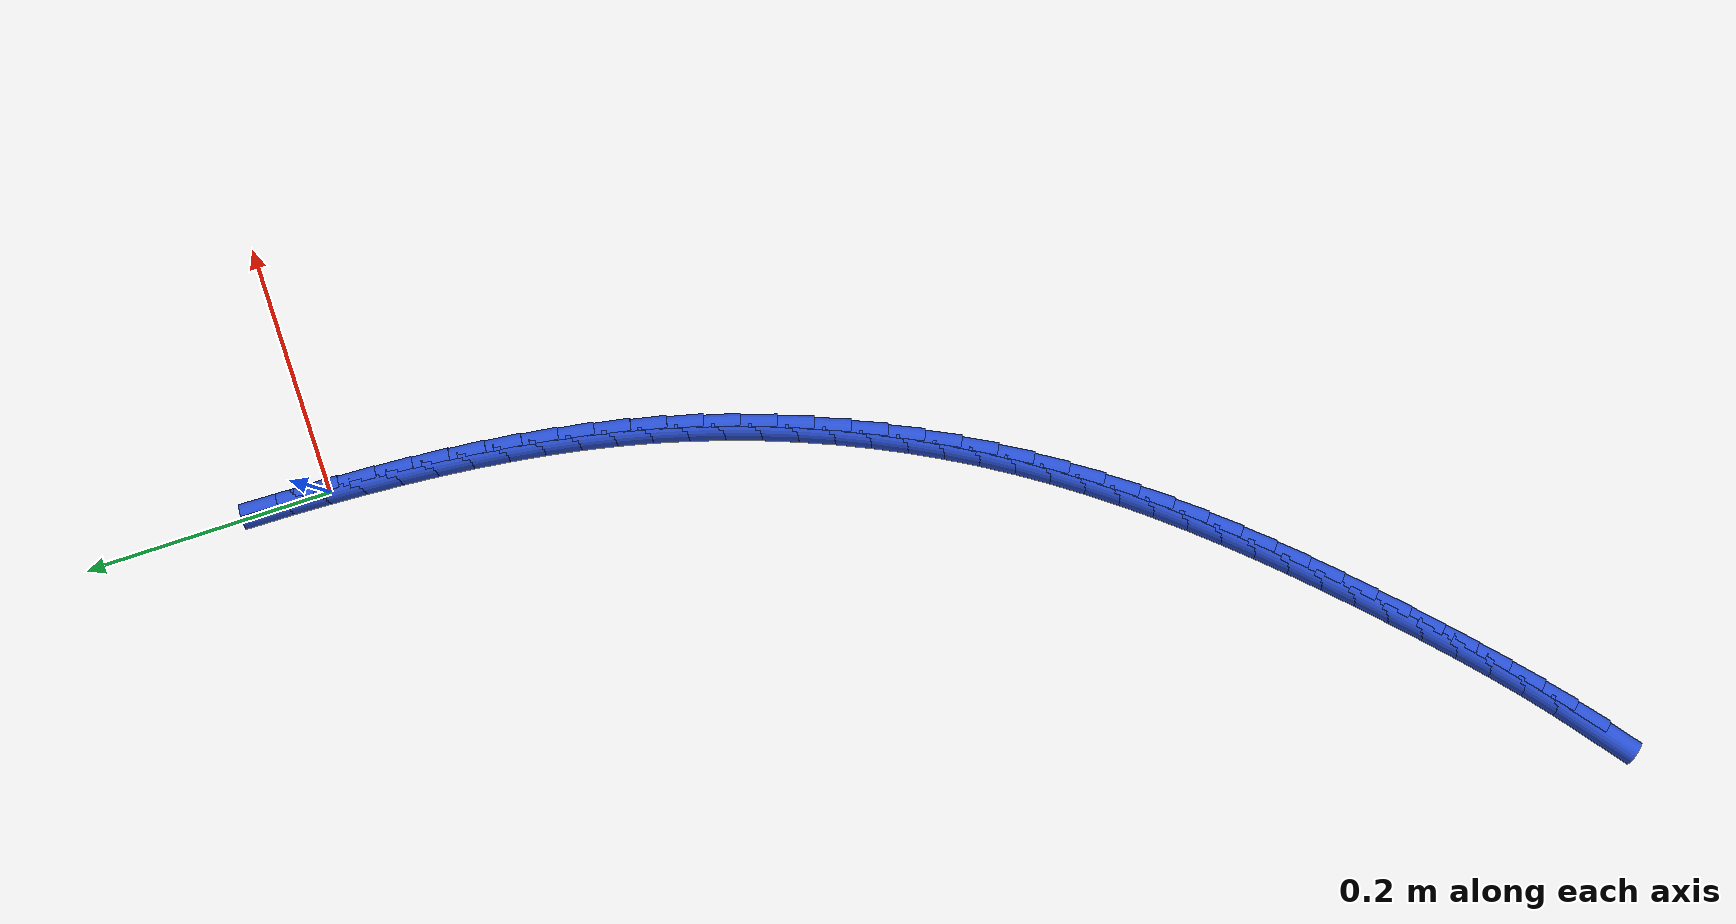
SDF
<sdf version="1.6">
 <world name="default">
  <model name="ground_plane">
   <static>1</static>
   <link name="link">
    <collision name="collision">
     <geometry><plane><normal>0 0 1</normal><size>100 100</size></plane></geometry>
     <surface><friction><ode><mu>100</mu><mu2>50</mu2></ode></friction></surface>
    </collision>
    <visual name="visual">
     <cast_shadows>0</cast_shadows>
     <geometry><plane><normal>0 0 1</normal><size>100 100</size></plane></geometry>
     <material>
      <script><uri>file://media/materials/scripts/gazebo.material</uri><name>Gazebo/WhiteGlow</name></script>
     </material>
    </visual>
   </link>
  </model>
  <model name="line">
   <link name="link_0">
    <pose>-1.0625181290357943e-17 3.469446951953614e-17 0.01 0 1.57 1.5319547142780796</pose>
    <collision name="collision">
     <geometry><cylinder><radius>0.01</radius><length>0.08</length></cylinder></geometry>
    </collision>
    <visual name="visual">
     <material>
      <script><name>Gazebo/Blue</name><uri>file://media/materials/scripts/gazebo.material</uri></script>
     </material>
     <geometry><cylinder><radius>0.01</radius><length>0.08</length></cylinder></geometry>
    </visual>
   </link>
   <link name="link_1">
    <pose>0.0011593005383207513 0.029831858247192315 0.01 0 1.57 1.551653794150923</pose>
    <collision name="collision">
     <geometry><cylinder><radius>0.01</radius><length>0.08</length></cylinder></geometry>
    </collision>
    <visual name="visual">
     <material>
      <script><name>Gazebo/Blue</name><uri>file://media/materials/scripts/gazebo.material</uri></script>
     </material>
     <geometry><cylinder><radius>0.01</radius><length>0.08</length></cylinder></geometry>
    </visual>
   </link>
   <link name="link_204">
    <pose>-0.47994454819354443 -0.8795739899895844 0.01 0 1.57 0.6713680718457643</pose>
    <collision name="collision">
     <geometry><cylinder><radius>0.01</radius><length>0.08</length></cylinder></geometry>
    </collision>
    <visual name="visual">
     <material>
      <script><name>Gazebo/Blue</name><uri>file://media/materials/scripts/gazebo.material</uri></script>
     </material>
     <geometry><cylinder><radius>0.01</radius><length>0.08</length></cylinder></geometry>
    </visual>
   </link>
   <link name="link_205">
    <pose>-0.4569850058315257 -0.8613330156940847 0.01 0 1.57 0.702355281988623</pose>
    <collision name="collision">
     <geometry><cylinder><radius>0.01</radius><length>0.08</length></cylinder></geometry>
    </collision>
    <visual name="visual">
     <material>
      <script><name>Gazebo/Blue</name><uri>file://media/materials/scripts/gazebo.material</uri></script>
     </material>
     <geometry><cylinder><radius>0.01</radius><length>0.08</length></cylinder></geometry>
    </visual>
   </link>
   <link name="link_206">
    <pose>-0.4344758293475783 -0.8422829903139324 0.01 0 1.57 0.7281456533366035</pose>
    <collision name="collision">
     <geometry><cylinder><radius>0.01</radius><length>0.08</length></cylinder></geometry>
    </collision>
    <visual name="visual">
     <material>
      <script><name>Gazebo/Blue</name><uri>file://media/materials/scripts/gazebo.material</uri></script>
     </material>
     <geometry><cylinder><radius>0.01</radius><length>0.08</length></cylinder></geometry>
    </visual>
   </link>
   <link name="link_207">
    <pose>-0.4123845741687112 -0.8225867893371276 0.01 0 1.57 0.7489748097054679</pose>
    <collision name="collision">
     <geometry><cylinder><radius>0.01</radius><length>0.08</length></cylinder></geometry>
    </collision>
    <visual name="visual">
     <material>
      <script><name>Gazebo/Blue</name><uri>file://media/materials/scripts/gazebo.material</uri></script>
     </material>
     <geometry><cylinder><radius>0.01</radius><length>0.08</length></cylinder></geometry>
    </visual>
   </link>
   <link name="link_208">
    <pose>-0.39067879572193304 -0.8024072882516703 0.01 0 1.57 0.7650242532784701</pose>
    <collision name="collision">
     <geometry><cylinder><radius>0.01</radius><length>0.08</length></cylinder></geometry>
    </collision>
    <visual name="visual">
     <material>
      <script><name>Gazebo/Blue</name><uri>file://media/materials/scripts/gazebo.material</uri></script>
     </material>
     <geometry><cylinder><radius>0.01</radius><length>0.08</length></cylinder></geometry>
    </visual>
   </link>
   <link name="link_209">
    <pose>-0.36932604943425384 -0.7819073625455619 0.01 0 1.57 0.7764852237362975</pose>
    <collision name="collision">
     <geometry><cylinder><radius>0.01</radius><length>0.08</length></cylinder></geometry>
    </collision>
    <visual name="visual">
     <material>
      <script><name>Gazebo/Blue</name><uri>file://media/materials/scripts/gazebo.material</uri></script>
     </material>
     <geometry><cylinder><radius>0.01</radius><length>0.08</length></cylinder></geometry>
    </visual>
   </link>
   <link name="link_210">
    <pose>-0.34829466221696265 -0.7612475760837761 0.01 0 1.57 0.7861799466689353</pose>
    <collision name="collision">
     <geometry><cylinder><radius>0.01</radius><length>0.08</length></cylinder></geometry>
    </collision>
    <visual name="visual">
     <material>
      <script><name>Gazebo/Blue</name><uri>file://media/materials/scripts/gazebo.material</uri></script>
     </material>
     <geometry><cylinder><radius>0.01</radius><length>0.08</length></cylinder></geometry>
    </visual>
   </link>
   <link name="link_211">
    <pose>-0.3275817446894052 -0.7405022471860951 0.01 0 1.57 0.7976688020346112</pose>
    <collision name="collision">
     <geometry><cylinder><radius>0.01</radius><length>0.08</length></cylinder></geometry>
    </collision>
    <visual name="visual">
     <material>
      <script><name>Gazebo/Blue</name><uri>file://media/materials/scripts/gazebo.material</uri></script>
     </material>
     <geometry><cylinder><radius>0.01</radius><length>0.08</length></cylinder></geometry>
    </visual>
   </link>
   <link name="link_212">
    <pose>-0.3072211144553334 -0.719635707860735 0.01 0 1.57 0.8112059954037696</pose>
    <collision name="collision">
     <geometry><cylinder><radius>0.01</radius><length>0.08</length></cylinder></geometry>
    </collision>
    <visual name="visual">
     <material>
      <script><name>Gazebo/Blue</name><uri>file://media/materials/scripts/gazebo.material</uri></script>
     </material>
     <geometry><cylinder><radius>0.01</radius><length>0.08</length></cylinder></geometry>
    </visual>
   </link>
   <link name="link_213">
    <pose>-0.28724897468685173 -0.6986051421611457 0.01 0 1.57 0.8268104898653519</pose>
    <collision name="collision">
     <geometry><cylinder><radius>0.01</radius><length>0.08</length></cylinder></geometry>
    </collision>
    <visual name="visual">
     <material>
      <script><name>Gazebo/Blue</name><uri>file://media/materials/scripts/gazebo.material</uri></script>
     </material>
     <geometry><cylinder><radius>0.01</radius><length>0.08</length></cylinder></geometry>
    </visual>
   </link>
   <link name="link_214">
    <pose>-0.26770152855606466 -0.6773677341407776 0.01 0 1.57 0.8444937566004622</pose>
    <collision name="collision">
     <geometry><cylinder><radius>0.01</radius><length>0.08</length></cylinder></geometry>
    </collision>
    <visual name="visual">
     <material>
      <script><name>Gazebo/Blue</name><uri>file://media/materials/scripts/gazebo.material</uri></script>
     </material>
     <geometry><cylinder><radius>0.01</radius><length>0.08</length></cylinder></geometry>
    </visual>
   </link>
   <link name="link_215">
    <pose>-0.2486149792350763 -0.6558806678530806 0.01 0 1.57 0.8642575942393349</pose>
    <collision name="collision">
     <geometry><cylinder><radius>0.01</radius><length>0.08</length></cylinder></geometry>
    </collision>
    <visual name="visual">
     <material>
      <script><name>Gazebo/Blue</name><uri>file://media/materials/scripts/gazebo.material</uri></script>
     </material>
     <geometry><cylinder><radius>0.01</radius><length>0.08</length></cylinder></geometry>
    </visual>
   </link>
   <link name="link_216">
    <pose>-0.23002552989599215 -0.634101127351506 0.01 0 1.57 0.886091705264706</pose>
    <collision name="collision">
     <geometry><cylinder><radius>0.01</radius><length>0.08</length></cylinder></geometry>
    </collision>
    <visual name="visual">
     <material>
      <script><name>Gazebo/Blue</name><uri>file://media/materials/scripts/gazebo.material</uri></script>
     </material>
     <geometry><cylinder><radius>0.01</radius><length>0.08</length></cylinder></geometry>
    </visual>
   </link>
   <link name="link_217">
    <pose>-0.2119693837109162 -0.6119862966895032 0.01 0 1.57 0.9099711052932391</pose>
    <collision name="collision">
     <geometry><cylinder><radius>0.01</radius><length>0.08</length></cylinder></geometry>
    </collision>
    <visual name="visual">
     <material>
      <script><name>Gazebo/Blue</name><uri>file://media/materials/scripts/gazebo.material</uri></script>
     </material>
     <geometry><cylinder><radius>0.01</radius><length>0.08</length></cylinder></geometry>
    </visual>
   </link>
   <link name="link_218">
    <pose>-0.194482743851953 -0.5894933599205231 0.01 0 1.57 0.9358534785083533</pose>
    <collision name="collision">
     <geometry><cylinder><radius>0.01</radius><length>0.08</length></cylinder></geometry>
    </collision>
    <visual name="visual">
     <material>
      <script><name>Gazebo/Blue</name><uri>file://media/materials/scripts/gazebo.material</uri></script>
     </material>
     <geometry><cylinder><radius>0.01</radius><length>0.08</length></cylinder></geometry>
    </visual>
   </link>
   <link name="link_219">
    <pose>-0.177601813491207 -0.5665795010980155 0.01 0 1.57 0.9636766329375381</pose>
    <collision name="collision">
     <geometry><cylinder><radius>0.01</radius><length>0.08</length></cylinder></geometry>
    </collision>
    <visual name="visual">
     <material>
      <script><name>Gazebo/Blue</name><uri>file://media/materials/scripts/gazebo.material</uri></script>
     </material>
     <geometry><cylinder><radius>0.01</radius><length>0.08</length></cylinder></geometry>
    </visual>
   </link>
   <link name="link_220">
    <pose>-0.16136279580078286 -0.5432019042754308 0.01 0 1.57 0.9933562479897843</pose>
    <collision name="collision">
     <geometry><cylinder><radius>0.01</radius><length>0.08</length></cylinder></geometry>
    </collision>
    <visual name="visual">
     <material>
      <script><name>Gazebo/Blue</name><uri>file://media/materials/scripts/gazebo.material</uri></script>
     </material>
     <geometry><cylinder><radius>0.01</radius><length>0.08</length></cylinder></geometry>
    </visual>
   </link>
   <link name="link_221">
    <pose>-0.14580189395278492 -0.519317753506219 0.01 0 1.57 1.0247807677291056</pose>
    <collision name="collision">
     <geometry><cylinder><radius>0.01</radius><length>0.08</length></cylinder></geometry>
    </collision>
    <visual name="visual">
     <material>
      <script><name>Gazebo/Blue</name><uri>file://media/materials/scripts/gazebo.material</uri></script>
     </material>
     <geometry><cylinder><radius>0.01</radius><length>0.08</length></cylinder></geometry>
    </visual>
   </link>
   <link name="link_222">
    <pose>-0.13095528704931472 -0.49488437873466135 0.01 0 1.57 1.0571944137857208</pose>
    <collision name="collision">
     <geometry><cylinder><radius>0.01</radius><length>0.08</length></cylinder></geometry>
    </collision>
    <visual name="visual">
     <material>
      <script><name>Gazebo/Blue</name><uri>file://media/materials/scripts/gazebo.material</uri></script>
     </material>
     <geometry><cylinder><radius>0.01</radius><length>0.08</length></cylinder></geometry>
    </visual>
   </link>
   <link name="link_223">
    <pose>-0.11685450376625506 -0.46988729662945716 0.01 0 1.57 1.0892281989807393</pose>
    <collision name="collision">
     <geometry><cylinder><radius>0.01</radius><length>0.08</length></cylinder></geometry>
    </collision>
    <visual name="visual">
     <material>
      <script><name>Gazebo/Blue</name><uri>file://media/materials/scripts/gazebo.material</uri></script>
     </material>
     <geometry><cylinder><radius>0.01</radius><length>0.08</length></cylinder></geometry>
    </visual>
   </link>
   <link name="link_224">
    <pose>-0.10352091090210834 -0.4443736160712647 0.01 0 1.57 1.1208273378303948</pose>
    <collision name="collision">
     <geometry><cylinder><radius>0.01</radius><length>0.08</length></cylinder></geometry>
    </collision>
    <visual name="visual">
     <material>
      <script><name>Gazebo/Blue</name><uri>file://media/materials/scripts/gazebo.material</uri></script>
     </material>
     <geometry><cylinder><radius>0.01</radius><length>0.08</length></cylinder></geometry>
    </visual>
   </link>
   <link name="link_225">
    <pose>-0.0909745328286823 -0.41839858253069817 0.01 0 1.57 1.1521230102411768</pose>
    <collision name="collision">
     <geometry><cylinder><radius>0.01</radius><length>0.08</length></cylinder></geometry>
    </collision>
    <visual name="visual">
     <material>
      <script><name>Gazebo/Blue</name><uri>file://media/materials/scripts/gazebo.material</uri></script>
     </material>
     <geometry><cylinder><radius>0.01</radius><length>0.08</length></cylinder></geometry>
    </visual>
   </link>
   <link name="link_226">
    <pose>-0.07923539391778499 -0.39201744147837253 0.01 0 1.57 1.1832451462177218</pose>
    <collision name="collision">
     <geometry><cylinder><radius>0.01</radius><length>0.08</length></cylinder></geometry>
    </collision>
    <visual name="visual">
     <material>
      <script><name>Gazebo/Blue</name><uri>file://media/materials/scripts/gazebo.material</uri></script>
     </material>
     <geometry><cylinder><radius>0.01</radius><length>0.08</length></cylinder></geometry>
    </visual>
   </link>
   <link name="link_227">
    <pose>-0.06832351854122451 -0.36528543838490257 0.01 0 1.57 1.2143232393679082</pose>
    <collision name="collision">
     <geometry><cylinder><radius>0.01</radius><length>0.08</length></cylinder></geometry>
    </collision>
    <visual name="visual">
     <material>
      <script><name>Gazebo/Blue</name><uri>file://media/materials/scripts/gazebo.material</uri></script>
     </material>
     <geometry><cylinder><radius>0.01</radius><length>0.08</length></cylinder></geometry>
    </visual>
   </link>
   <link name="link_228">
    <pose>-0.05825893107080887 -0.33825781872090316 0.01 0 1.57 1.2454872118786933</pose>
    <collision name="collision">
     <geometry><cylinder><radius>0.01</radius><length>0.08</length></cylinder></geometry>
    </collision>
    <visual name="visual">
     <material>
      <script><name>Gazebo/Blue</name><uri>file://media/materials/scripts/gazebo.material</uri></script>
     </material>
     <geometry><cylinder><radius>0.01</radius><length>0.08</length></cylinder></geometry>
    </visual>
   </link>
   <link name="link_229">
    <pose>-0.049061655878346204 -0.31098982795698926 0.01 0 1.57 1.2768683097156441</pose>
    <collision name="collision">
     <geometry><cylinder><radius>0.01</radius><length>0.08</length></cylinder></geometry>
    </collision>
    <visual name="visual">
     <material>
      <script><name>Gazebo/Blue</name><uri>file://media/materials/scripts/gazebo.material</uri></script>
     </material>
     <geometry><cylinder><radius>0.01</radius><length>0.08</length></cylinder></geometry>
    </visual>
   </link>
   <link name="link_230">
    <pose>-0.040751717335644345 -0.2835367115637749 0.01 0 1.57 1.3085996119737315</pose>
    <collision name="collision">
     <geometry><cylinder><radius>0.01</radius><length>0.08</length></cylinder></geometry>
    </collision>
    <visual name="visual">
     <material>
      <script><name>Gazebo/Blue</name><uri>file://media/materials/scripts/gazebo.material</uri></script>
     </material>
     <geometry><cylinder><radius>0.01</radius><length>0.08</length></cylinder></geometry>
    </visual>
   </link>
   <link name="link_231">
    <pose>-0.03334912375203303 -0.2559536987772081 0.01 0 1.57 1.3403132823644743</pose>
    <collision name="collision">
     <geometry><cylinder><radius>0.01</radius><length>0.08</length></cylinder></geometry>
    </collision>
    <visual name="visual">
     <material>
      <script><name>Gazebo/Blue</name><uri>file://media/materials/scripts/gazebo.material</uri></script>
     </material>
     <geometry><cylinder><radius>0.01</radius><length>0.08</length></cylinder></geometry>
    </visual>
   </link>
   <link name="link_232">
    <pose>-0.026854592447471865 -0.22827652104455318 0.01 0 1.57 1.3705009116220244</pose>
    <collision name="collision">
     <geometry><cylinder><radius>0.01</radius><length>0.08</length></cylinder></geometry>
    </collision>
    <visual name="visual">
     <material>
      <script><name>Gazebo/Blue</name><uri>file://media/materials/scripts/gazebo.material</uri></script>
     </material>
     <geometry><cylinder><radius>0.01</radius><length>0.08</length></cylinder></geometry>
    </visual>
   </link>
   <link name="link_233">
    <pose>-0.021212140435300387 -0.20048360167944504 0.01 0 1.57 1.3986935502129771</pose>
    <collision name="collision">
     <geometry><cylinder><radius>0.01</radius><length>0.08</length></cylinder></geometry>
    </collision>
    <visual name="visual">
     <material>
      <script><name>Gazebo/Blue</name><uri>file://media/materials/scripts/gazebo.material</uri></script>
     </material>
     <geometry><cylinder><radius>0.01</radius><length>0.08</length></cylinder></geometry>
    </visual>
   </link>
   <link name="link_234">
    <pose>-0.01635542013769702 -0.17254288829599077 0.01 0 1.57 1.4247158550120642</pose>
    <collision name="collision">
     <geometry><cylinder><radius>0.01</radius><length>0.08</length></cylinder></geometry>
    </collision>
    <visual name="visual">
     <material>
      <script><name>Gazebo/Blue</name><uri>file://media/materials/scripts/gazebo.material</uri></script>
     </material>
     <geometry><cylinder><radius>0.01</radius><length>0.08</length></cylinder></geometry>
    </visual>
   </link>
   <link name="link_235">
    <pose>-0.012218083976840216 -0.14442232850829767 0.01 0 1.57 1.4484316566570257</pose>
    <collision name="collision">
     <geometry><cylinder><radius>0.01</radius><length>0.08</length></cylinder></geometry>
    </collision>
    <visual name="visual">
     <material>
      <script><name>Gazebo/Blue</name><uri>file://media/materials/scripts/gazebo.material</uri></script>
     </material>
     <geometry><cylinder><radius>0.01</radius><length>0.08</length></cylinder></geometry>
    </visual>
   </link>
   <link name="link_236">
    <pose>-0.008733784374908418 -0.11608986993047297 0.01 0 1.57 1.4697430216542997</pose>
    <collision name="collision">
     <geometry><cylinder><radius>0.01</radius><length>0.08</length></cylinder></geometry>
    </collision>
    <visual name="visual">
     <material>
      <script><name>Gazebo/Blue</name><uri>file://media/materials/scripts/gazebo.material</uri></script>
     </material>
     <geometry><cylinder><radius>0.01</radius><length>0.08</length></cylinder></geometry>
    </visual>
   </link>
   <link name="link_237">
    <pose>-0.005836173754080062 -0.08751346017662373 0.01 0 1.57 1.4885879027103157</pose>
    <collision name="collision">
     <geometry><cylinder><radius>0.01</radius><length>0.08</length></cylinder></geometry>
    </collision>
    <visual name="visual">
     <material>
      <script><name>Gazebo/Blue</name><uri>file://media/materials/scripts/gazebo.material</uri></script>
     </material>
     <geometry><cylinder><radius>0.01</radius><length>0.08</length></cylinder></geometry>
    </visual>
   </link>
   <link name="link_238">
    <pose>-0.0034589045365335347 -0.058661046860856436 0.01 0 1.57 1.5049368287314069</pose>
    <collision name="collision">
     <geometry><cylinder><radius>0.01</radius><length>0.08</length></cylinder></geometry>
    </collision>
    <visual name="visual">
     <material>
      <script><name>Gazebo/Blue</name><uri>file://media/materials/scripts/gazebo.material</uri></script>
     </material>
     <geometry><cylinder><radius>0.01</radius><length>0.08</length></cylinder></geometry>
    </visual>
   </link>
   <link name="link_239">
    <pose>-0.0015356291444473965 -0.029500577597279774 0.01 0 1.57 1.5187890605272656</pose>
    <collision name="collision">
     <geometry><cylinder><radius>0.01</radius><length>0.08</length></cylinder></geometry>
    </collision>
    <visual name="visual">
     <material>
      <script><name>Gazebo/Blue</name><uri>file://media/materials/scripts/gazebo.material</uri></script>
     </material>
     <geometry><cylinder><radius>0.01</radius><length>0.08</length></cylinder></geometry>
    </visual>
   </link>
   <link name="link_240">
    <pose>-2.3960868011929648e-17 -2.0816681711721685e-16 0.01 0 1.57 1.530168572560875</pose>
    <collision name="collision">
     <geometry><cylinder><radius>0.01</radius><length>0.08</length></cylinder></geometry>
    </collision>
    <visual name="visual">
     <material>
      <script><name>Gazebo/Blue</name><uri>file://media/materials/scripts/gazebo.material</uri></script>
     </material>
     <geometry><cylinder><radius>0.01</radius><length>0.08</length></cylinder></geometry>
    </visual>
   </link>
   <link name="link_241">
    <pose>0.0012143304746301447 0.02987273831687512 0.01 0 1.57 1.5391201361037203</pose>
    <collision name="collision">
     <geometry><cylinder><radius>0.01</radius><length>0.08</length></cylinder></geometry>
    </collision>
    <visual name="visual">
     <material>
      <script><name>Gazebo/Blue</name><uri>file://media/materials/scripts/gazebo.material</uri></script>
     </material>
     <geometry><cylinder><radius>0.01</radius><length>0.08</length></cylinder></geometry>
    </visual>
   </link>
  </model>
 </world>
</sdf>
